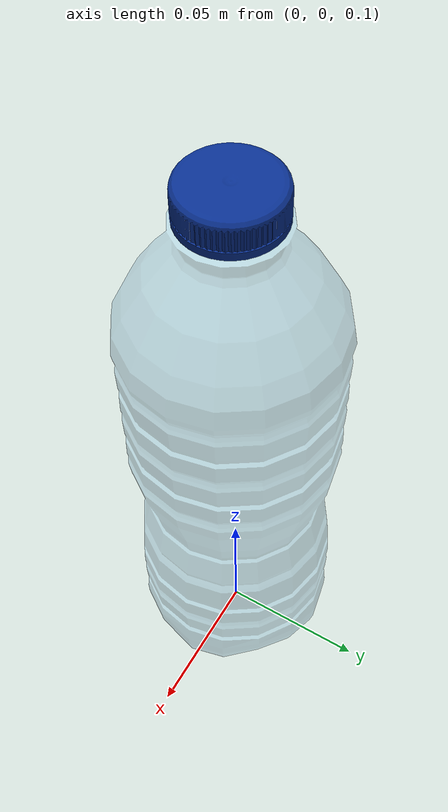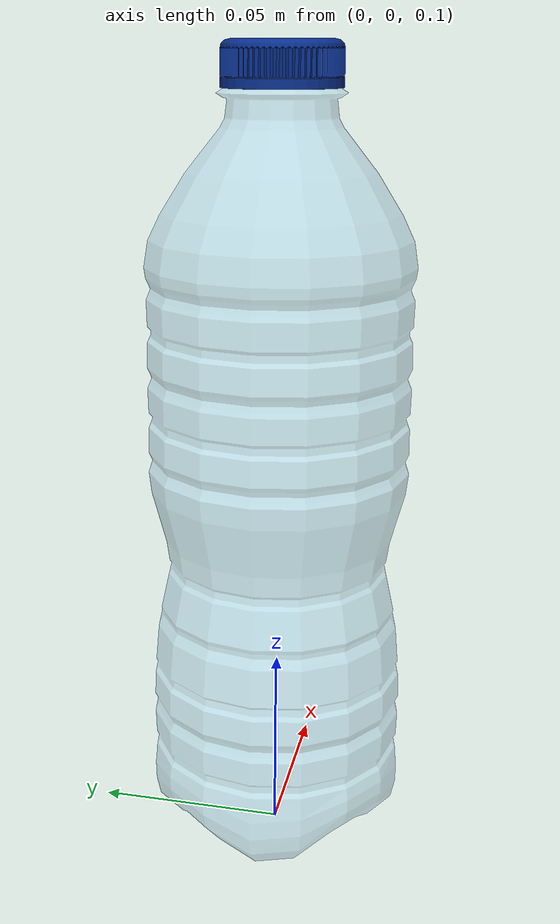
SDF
<?xml version="1.0" ?>
<sdf version="1.7">

  <model name="water_bottle_02">

    <static>false</static>

    <link name="bottle_link">

      <!-- Bottle center: half of 0.21 m -->
      <pose>0 0 0.105 0 0 0</pose>

      <inertial>
        <mass>0.5</mass>
        <inertia>
          <ixx>0.0019</ixx>
          <iyy>0.0019</iyy>
          <izz>0.0005</izz>
          <ixy>0</ixy>
          <ixz>0</ixz>
          <iyz>0</iyz>
        </inertia>
      </inertial>

      <!-- Simple collision body for stable grasping -->
      <collision name="collision">
        <geometry>
          <cylinder>
            <radius>0.032</radius>
            <length>0.21</length>
          </cylinder>
        </geometry>
      </collision>

      <!-- Transparent bottle body -->
      <visual name="bottle_body_visual">

        <geometry>
          <mesh>
            <uri>model://water_bottle_02/meshes/bottle_body.obj</uri>
          </mesh>
        </geometry>

        <material>
          <ambient>0.55 0.75 0.90 1</ambient>
          <diffuse>0.65 0.85 0.95 1</diffuse>
          <specular>0.9 0.9 0.9 1</specular>
        </material>

        <transparency>0.55</transparency>

      </visual>

      <!-- Blue bottle cap -->
      <visual name="bottle_cap_visual">

        <!-- Move cap downward by 1.2 cm -->
        <pose>0 0 0 0 0 0</pose>

        <geometry>
          <mesh>
            <uri>model://water_bottle_02/meshes/bottle_cap.obj</uri>
          </mesh>
        </geometry>

        <material>
          <ambient>0.02 0.10 0.30 1</ambient>
          <diffuse>0.03 0.18 0.55 1</diffuse>
          <specular>0.35 0.35 0.35 1</specular>
        </material>

      </visual>

    </link>

  </model>

</sdf>
